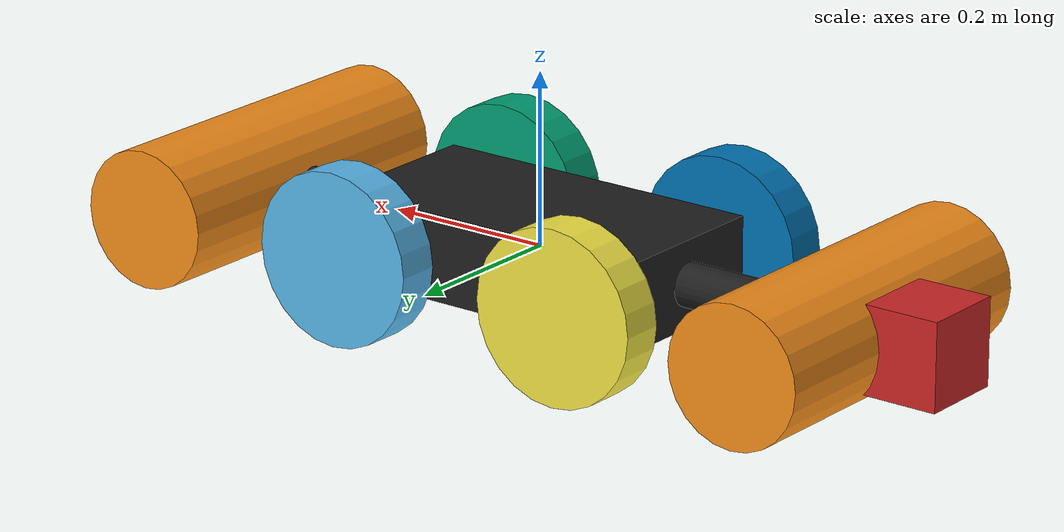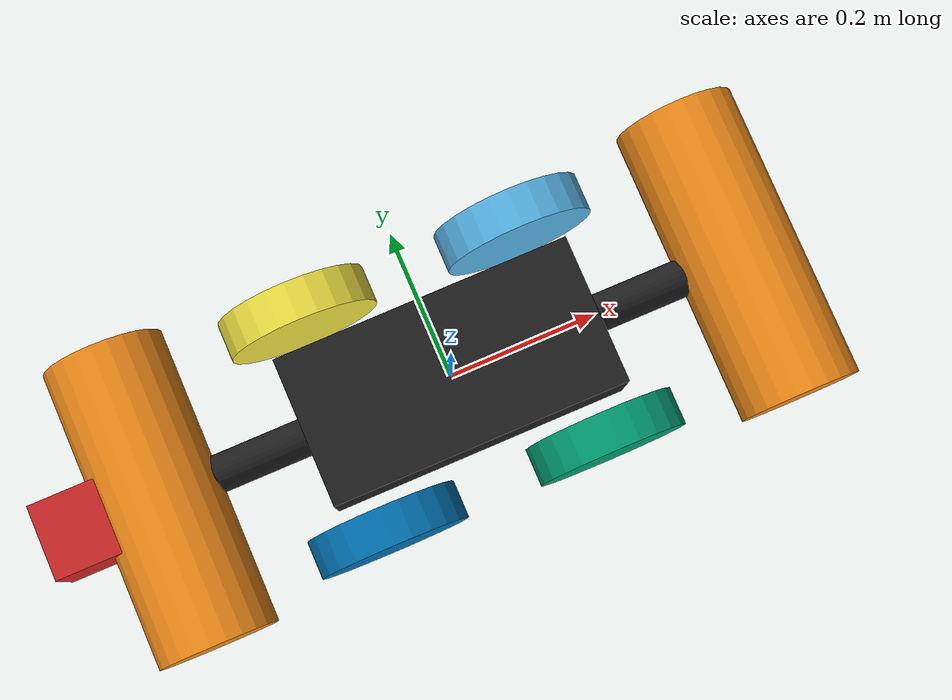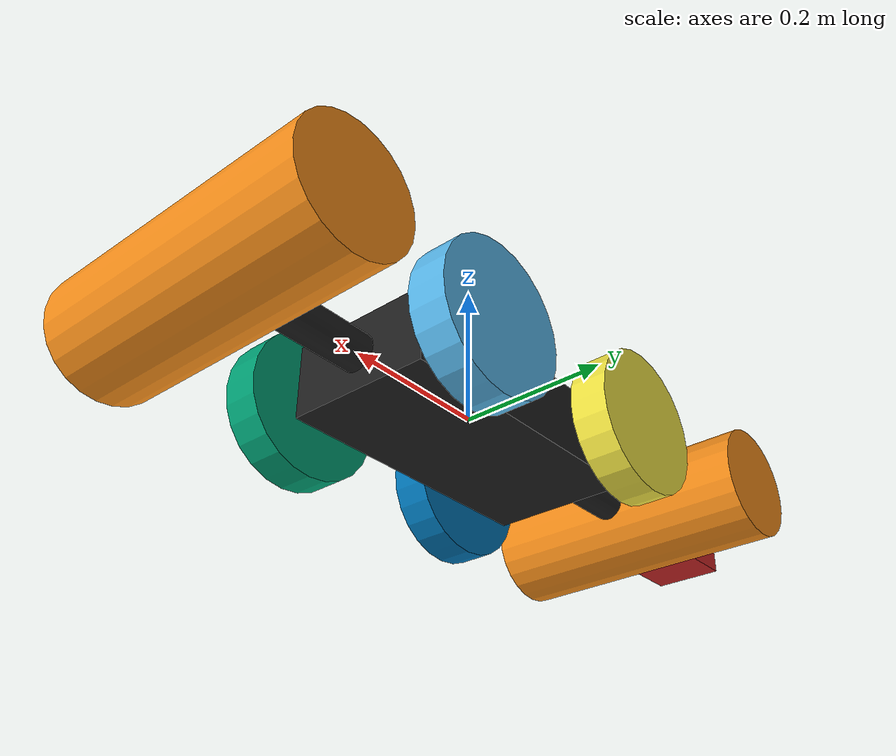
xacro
<?xml version='1.0'?>

<robot name="ez_rassor" xmlns:xacro="http://www.ros.org/wiki/xacro">

 <xacro:include filename="$(find ez_rassor_description)/urdf/ez_rassor.gazebo" />
 <xacro:include filename="$(find ez_rassor_description)/urdf/materials.xacro" />
 <xacro:include filename="$(find ez_rassor_description)/urdf/macros.xacro" />

  <link name='base_link'>

    <pose>0 0 0.1 0 0 0</pose>

    <inertial>
      <mass value="1.0"/>
      <origin xyz="0.0 0 0.1" rpy=" 0 0 0"/>
      <box_inertia m="1.0" x=".4" y=".2" z=".1"/>
    </inertial>

    <collision name='collision'>
      <geometry>
        <box size=".4 .2 .1"/>
      </geometry>
    </collision>

    <visual name='base_link_visual'>
      <origin xyz="0 0 0" rpy=" 0 0 0"/>
      <geometry>
        <box size=".4 .2 .1"/>
      </geometry>
    </visual>

  </link>

  <link name="left_wheel_front">

    <collision name="collision">
      <origin xyz="0 0 0" rpy="0 1.5707 1.5707"/>
      <geometry>
        <cylinder radius="0.1" length="0.05"/>
      </geometry>
    </collision>

    <visual name="left_wheel_front_visual">
      <origin xyz="0 0 0" rpy="0 1.5707 1.5707"/>
      <geometry>
        <cylinder radius="0.1" length="0.05"/>
      </geometry>
    </visual>

    <inertial>
      <origin xyz="0 0 0" rpy="0 1.5707 1.5707"/>
      <mass value=".5"/>
      <cylinder_inertia m=".5" r="0.1" h="0.05"/>
    </inertial>

  </link>

  <link name="right_wheel_front">

    <collision name="collision">
      <origin xyz="0 0 0" rpy="0 1.5707 1.5707"/>
      <geometry>
        <cylinder radius="0.1" length="0.05"/>
      </geometry>
    </collision>

    <visual name="right_wheel_front_visual">
      <origin xyz="0 0 0" rpy="0 1.5707 1.5707"/>
      <geometry>
        <cylinder radius="0.1" length="0.05"/>
      </geometry>
    </visual>

    <inertial>
      <origin xyz="0 0 0" rpy="0 1.5707 1.5707"/>
      <mass value=".5"/>
      <cylinder_inertia m=".5" r="0.1" h="0.05"/>
    </inertial>

  </link>

  <link name="left_wheel_back">

    <collision name="collision">
      <origin xyz="0 0 0" rpy="0 1.5707 1.5707"/>
      <geometry>
        <cylinder radius="0.1" length="0.05"/>
      </geometry>
    </collision>

    <visual name="left_wheel_back_visual">
      <origin xyz="0 0 0" rpy="0 1.5707 1.5707"/>
      <geometry>
        <cylinder radius="0.1" length="0.05"/>
      </geometry>
    </visual>

    <inertial>
      <origin xyz="0 0 0" rpy="0 1.5707 1.5707"/>
      <mass value=".5"/>
      <cylinder_inertia m=".5" r="0.1" h="0.05"/>
    </inertial>

  </link>

  <link name="right_wheel_back">

    <collision name="collision">
      <origin xyz="0 0 0" rpy="0 1.5707 1.5707"/>
      <geometry>
        <cylinder radius="0.1" length="0.05"/>
      </geometry>
    </collision>

    <visual name="right_wheel_back_visual">
      <origin xyz="0 0 0" rpy="0 1.5707 1.5707"/>
      <geometry>
        <cylinder radius="0.1" length="0.05"/>
      </geometry>
    </visual>

    <inertial>
      <origin xyz="0 0 0" rpy="0 1.5707 1.5707"/>
      <mass value=".5"/>
      <cylinder_inertia m=".5" r="0.1" h="0.05"/>
    </inertial>

  </link>

  <link name="arm_back">

    <collision name="collision">
      <origin xyz="0 .1 0" rpy="0 1.5707 1.5707"/>
      <geometry>
        <cylinder radius="0.025" length="0.3"/>
      </geometry>
    </collision>

    <visual name="arm_back_visual">
      <origin xyz="0 .1 0" rpy="0 1.5707 1.5707"/>
      <geometry>
        <cylinder radius="0.025" length="0.3"/>
      </geometry>
    </visual>

    <inertial>
      <origin xyz="0 0 0" rpy="0 1.5707 1.5707"/>
      <mass value=".5"/>
      <cylinder_inertia m=".5" r="0.1" h="0.05"/>
    </inertial>

  </link>

  <link name="arm_front">

    <collision name="collision">
      <origin xyz="0 -.1 0" rpy="0 1.5707 1.5707"/>
      <geometry>
        <cylinder radius="0.025" length="0.3"/>
      </geometry>
    </collision>

    <visual name="arm_front_visual">
      <origin xyz="0 -.1 0" rpy="0 1.5707 1.5707"/>
      <geometry>
        <cylinder radius="0.025" length="0.3"/>
      </geometry>
    </visual>

    <inertial>
      <origin xyz="0 0 0" rpy="0 1.5707 1.5707"/>
      <mass value=".5"/>
      <cylinder_inertia m=".5" r="0.1" h="0.05"/>
    </inertial>

  </link>

  <link name="drum_front">

    <collision name="collision">
      <origin xyz="0 0 0" rpy="0 1.5707 1.5707"/>
      <geometry>
        <cylinder radius="0.07" length="0.05"/>
      </geometry>
    </collision>

    <visual name="drum_front_visual">
      <origin xyz="0 0 0" rpy="0 1.5707 1.5707"/>
      <geometry>
        <cylinder radius="0.08" length="0.4"/>
      </geometry>
    </visual>

    <inertial>
      <origin xyz="0 0 0" rpy="0 1.5707 1.5707"/>
      <mass value="10"/>
      <cylinder_inertia m="10" r="0.1" h="0.05"/>
    </inertial>

  </link>

  <link name="drum_back">

    <collision name="collision">
      <origin xyz="0 0 0" rpy="0 1.5707 1.5707"/>
      <geometry>
        <cylinder radius="0.07" length="0.05"/>
      </geometry>
    </collision>

    <visual name="drum_back">
      <origin xyz="0 0 0" rpy="0 1.5707 1.5707"/>
      <geometry>
        <cylinder radius="0.08" length="0.4"/>
      </geometry>
    </visual>

    <inertial>
      <origin xyz="0 0 0" rpy="0 1.5707 1.5707"/>
      <mass value="10"/>
      <cylinder_inertia m="10" r="0.1" h="0.05"/>
    </inertial>

  </link>

  <link name="camera_back">

    <collision>
      <origin xyz="0 0 0" rpy="0 1.57 1.57"/>
      <geometry>
    <box size=".1 .1 .1"/>
      </geometry>
    </collision>

    <visual>
      <origin xyz="0 0 0" rpy="0 0 0"/>
      <geometry>
    <box size=".1 .1 .1"/>
      </geometry>
      <material name="red"/>
    </visual>

    <inertial>
      <mass value="1e-5" />
      <origin xyz="0 0 0" rpy="0 0 0"/>
      <box_inertia m="1e-5" x=".1" y = ".1" z=".1"/>
    </inertial>

  </link>

  <transmission name="left_wheel_back_tran">
    <type>transmission_interface/SimpleTransmission</type>
    <joint name="left_wheel_back_hinge">
      <hardwareInterface>hardware_interface/EffortJointInterface</hardwareInterface>
    </joint>
    <actuator name="left_wheel_back_motor">
      <hardwareInterface>hardware_interface/EffortJointInterface</hardwareInterface>
      <mechanicalReduction>1</mechanicalReduction>
    </actuator>
  </transmission>

  <transmission name="left_wheel_front_tran">
    <type>transmission_interface/SimpleTransmission</type>
    <joint name="left_wheel_front_hinge">
      <hardwareInterface>hardware_interface/EffortJointInterface</hardwareInterface>
    </joint>
    <actuator name="left_wheel_front_motor">
      <hardwareInterface>hardware_interface/EffortJointInterface</hardwareInterface>
      <mechanicalReduction>1</mechanicalReduction>
    </actuator>
  </transmission>

  <transmission name="right_wheel_back_tran">
    <type>transmission_interface/SimpleTransmission</type>
    <joint name="right_wheel_back_hinge">
      <hardwareInterface>hardware_interface/EffortJointInterface</hardwareInterface>
    </joint>
    <actuator name="right_wheel_back_motor">
      <hardwareInterface>hardware_interface/EffortJointInterface</hardwareInterface>
      <mechanicalReduction>1</mechanicalReduction>
    </actuator>
  </transmission>

  <transmission name="right_wheel_front_tran">
    <type>transmission_interface/SimpleTransmission</type>
    <joint name="right_wheel_front_hinge">
      <hardwareInterface>hardware_interface/EffortJointInterface</hardwareInterface>
    </joint>
    <actuator name="right_wheel_front_motor">
      <hardwareInterface>hardware_interface/EffortJointInterface</hardwareInterface>
      <mechanicalReduction>1</mechanicalReduction>
    </actuator>
  </transmission>

  <joint name="camera_joint" type="fixed">
    <axis xyz="0 1 0" />
    <origin xyz="0.1 0 0" rpy="0 0 0"/>
    <parent link="drum_back"/>
    <child link="camera_back"/>
  </joint>

  <joint type="continuous" name="left_wheel_front_hinge">
    <origin xyz="0.15 0.15 0" rpy="0 0 0"/>
    <child link="left_wheel_front"/>
    <parent link="base_link"/>
    <axis xyz="0 1 0" rpy="0 0 0"/>
    <limit effort="100" velocity="100"/>
    <joint_properties damping="0.1" friction="0.7"/>
  </joint>

  <joint type="continuous" name="right_wheel_front_hinge">
    <origin xyz="0.15 -0.15 0" rpy="0 0 0"/>
    <child link="right_wheel_front"/>
    <parent link="base_link"/>
    <axis xyz="0 1 0" rpy="0 0 0"/>
    <limit effort="100" velocity="100"/>
    <joint_properties damping="0.1" friction="0.7"/>
  </joint>

  <joint type="continuous" name="left_wheel_back_hinge">
    <origin xyz="-0.15 0.15 0" rpy="0 0 0"/>
    <child link="left_wheel_back"/>
    <parent link="base_link"/>
    <axis xyz="0 1 0" rpy="0 0 0"/>
    <limit effort="100" velocity="100"/>
    <joint_properties damping="0.1" friction="0.7"/>
  </joint>

  <joint type="continuous" name="right_wheel_back_hinge">
    <origin xyz="-0.15 -0.15 0" rpy="0 0 0"/>
    <child link="right_wheel_back"/>
    <parent link="base_link"/>
    <axis xyz="0 1 0" rpy="0 0 0"/>
    <limit effort="100" velocity="100"/>
    <joint_properties damping="0.1" friction="0.7"/>
  </joint>

  <joint type="fixed" name="arm_back_hinge">
    <origin xyz="-0.2 0 0" rpy="0 0 1.57"/>
    <child link="arm_back"/>
    <parent link="base_link"/>
    <axis xyz="1 0 0" rpy="0 0 0"/>
    <limit effort="100" velocity="100"/>
    <joint_properties damping="0.0" friction="0.0"/>
  </joint>

  <joint type="fixed" name="arm_front_hinge">
    <origin xyz="0.2 0 0" rpy="0 0 1.57"/>
    <child link="arm_front"/>
    <parent link="base_link"/>
    <axis xyz="1 0 0" rpy="0 0 0"/>
    <limit effort="100" velocity="100"/>
    <joint_properties damping="0.0" friction="0.0"/>
  </joint>

  <joint type="fixed" name="drum_front_hinge">
    <origin xyz="0 -0.2 0" rpy="0 0 1.57"/>
    <child link="drum_front"/>
    <parent link="arm_front"/>
    <axis xyz="0 1 0" rpy="0 0 0"/>
    <limit effort="100" velocity="100"/>
    <joint_properties damping="0.0" friction="0.0"/>
  </joint>

  <joint type="fixed" name="drum_back_hinge">
    <origin xyz="0 0.2 0" rpy="0 0 1.57"/>
    <child link="drum_back"/>
    <parent link="arm_back"/>
    <axis xyz="0 1 0" rpy="0 0 0"/>
    <limit effort="100" velocity="100"/>
    <joint_properties damping="0.0" friction="0.0"/>
  </joint>

</robot>

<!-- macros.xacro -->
<robot name="ez_rassor" xmlns:xacro="http://www.ros.org/wiki/xacro">
    <macro name="cylinder_inertia" params="m r h">
    <inertia  ixx="${m*(3*r*r+h*h)/12}" ixy = "0" ixz = "0"
        iyy="${m*(3*r*r+h*h)/12}" iyz = "0"
        izz="${m*r*r/2}"
    />
    </macro>

    <macro name="box_inertia" params="m x y z">
    <inertia  ixx="${m*(y*y+z*z)/12}" ixy = "0" ixz = "0"
        iyy="${m*(x*x+z*z)/12}" iyz = "0"
        izz="${m*(x*x+z*z)/12}"
    />
    </macro>

    <macro name="sphere_inertia" params="m r">
    <inertia  ixx="${2*m*r*r/5}" ixy = "0" ixz = "0"
        iyy="${2*m*r*r/5}" iyz = "0"
        izz="${2*m*r*r/5}"
    />
    </macro>

    <macro name="robot_arm">
        <mesh filename="package://ez_rassor_description/meshes/drum_arm_short.dae" scale="1.0 1.0 1.0"></mesh>
    </macro>

    <macro name="robot_arm_drum">
        <mesh filename="package://ez_rassor_description/meshes/drum.dae" scale="1.5 1.5 1.5"></mesh>
    </macro>

    <macro name="robot_wheel">
        <mesh filename="package://ez_rassor_description/meshes/wheel.dae" scale="1.1 1.1 1.1"></mesh>
    </macro>

</robot>
